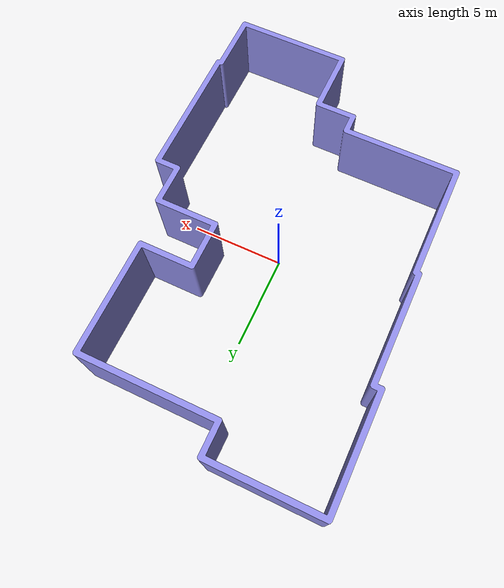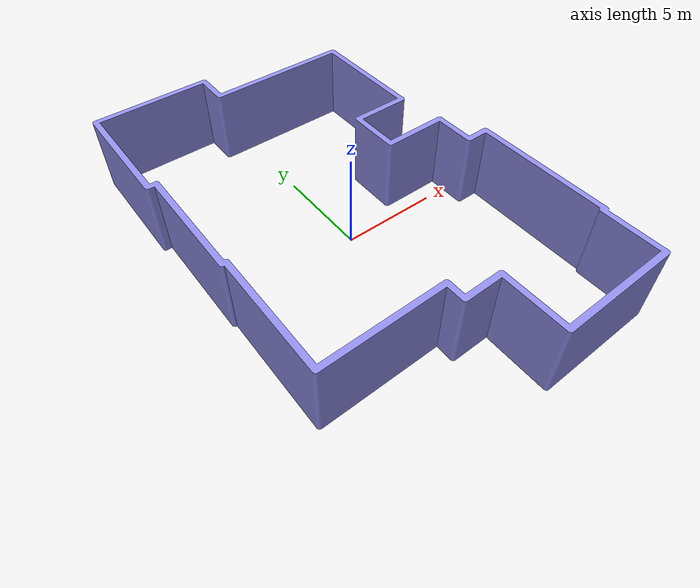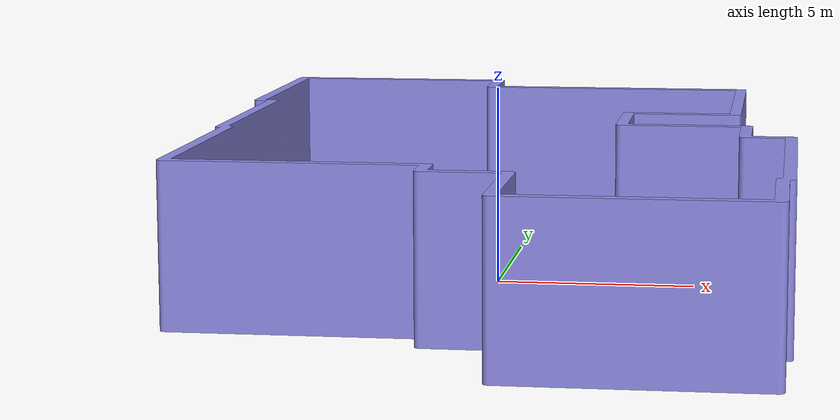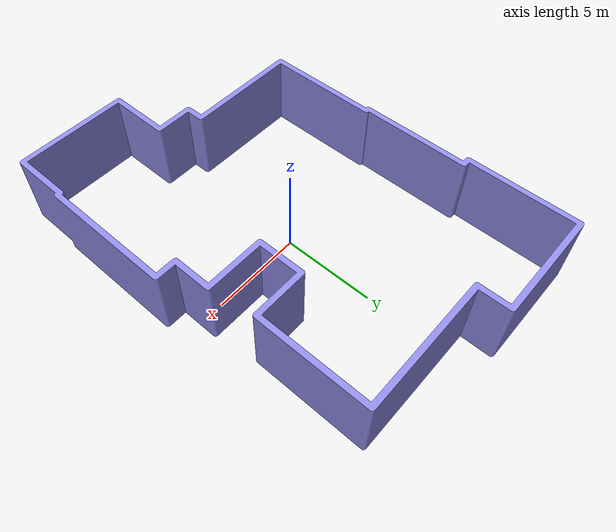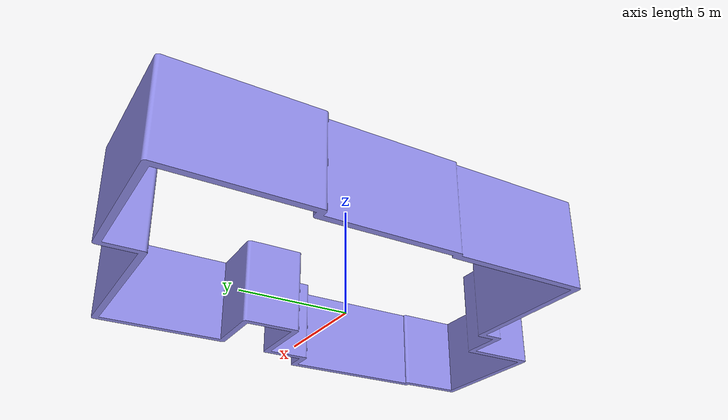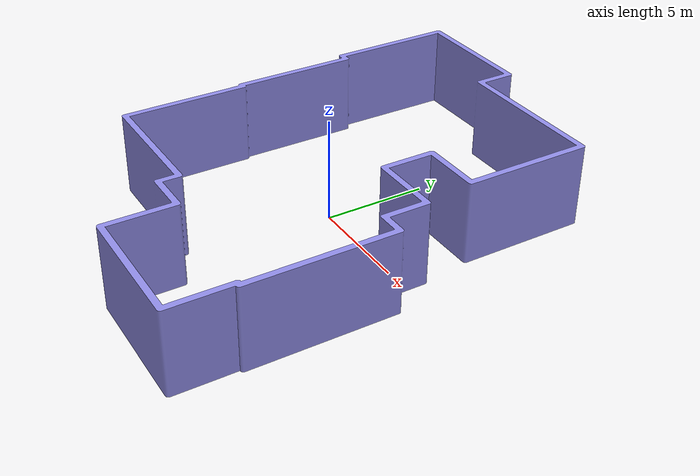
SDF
<?xml version="1.0" ?>
<sdf version="1.6">
  <model name="walls_9">
    <pose frame="">0 0 2 0 -0 0</pose>
    <static>1</static>
    <self_collide>0</self_collide>
    <allow_auto_disable>0</allow_auto_disable>
    <link name="mesh">
      <kinematic>0</kinematic>
      <gravity>1</gravity>
      <self_collide>0</self_collide>
      <collision name="collision">
        <geometry>
          <mesh>
            <uri>model://walls_9/meshes/iLuVSdALeZ.stl</uri>
            <scale>1 1 1</scale>
          </mesh>
        </geometry>
        <pose frame="">-0.0970547 1.29565 -2 0 -0 0</pose>
        <max_contacts>20</max_contacts>
      </collision>
      <visual name="visual">
        <geometry>
          <mesh>
            <uri>model://walls_9/meshes/foLqEenUcN.stl</uri>
            <scale>1 1 1</scale>
          </mesh>
        </geometry>
        <material>
          <ambient>0.560784 0.54902 0.905882 1</ambient>
          <diffuse>0.5607843137254902 0.5490196078431373 0.9058823529411765 1</diffuse>
        </material>
        <pose frame="">-0.0970547 1.29565 -2 0 -0 0</pose>
        <cast_shadows>1</cast_shadows>
        <transparency>0.0</transparency>
      </visual>
      <pose frame="">0 0 0 0 -0 0</pose>
    </link>
  </model>
</sdf>
